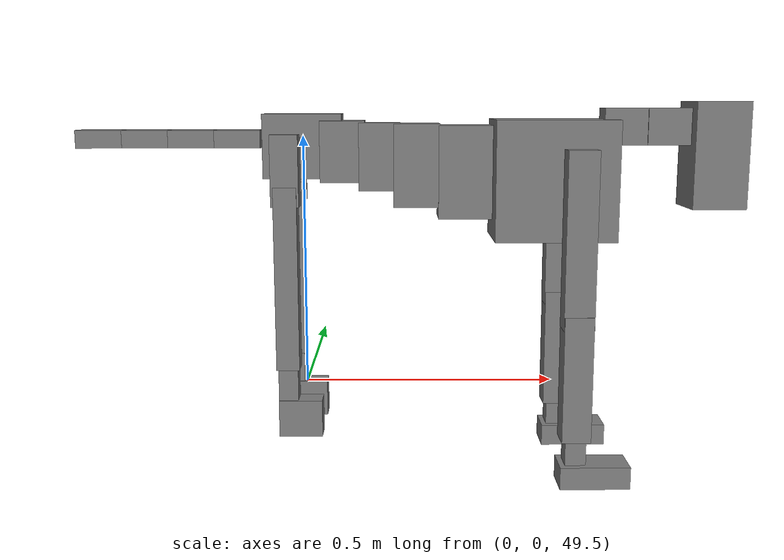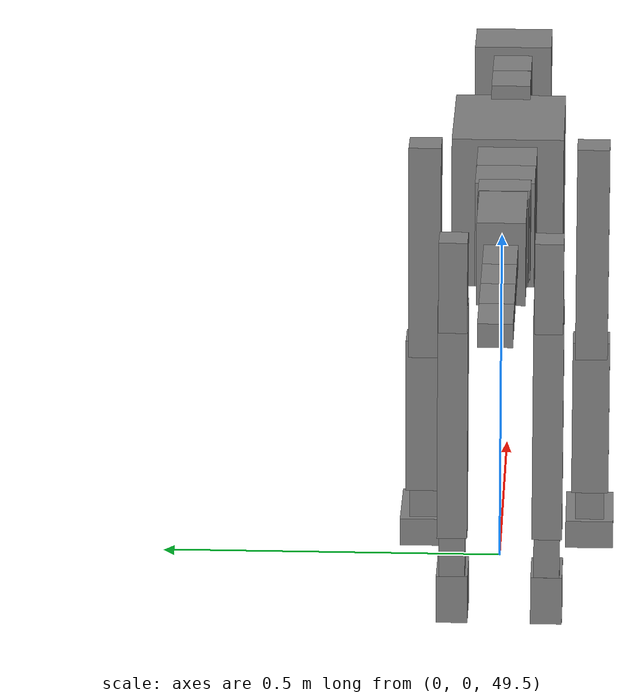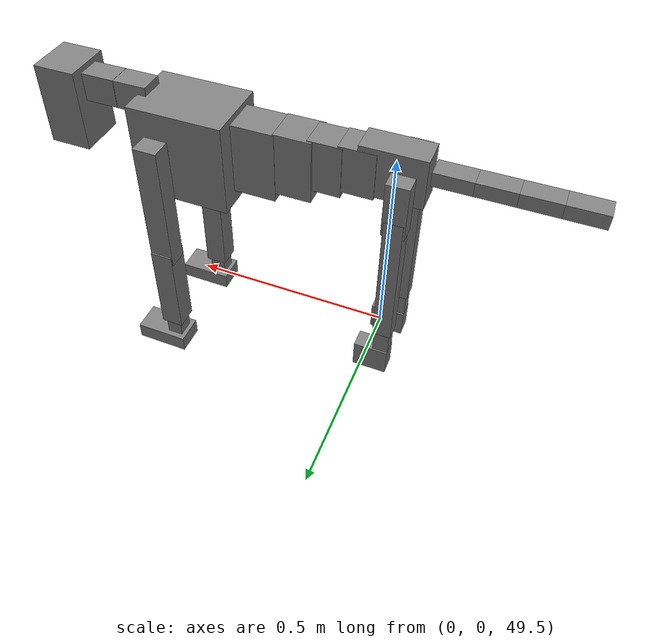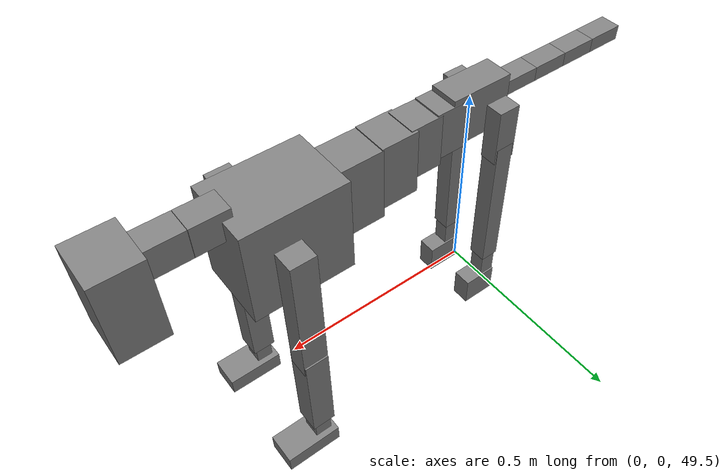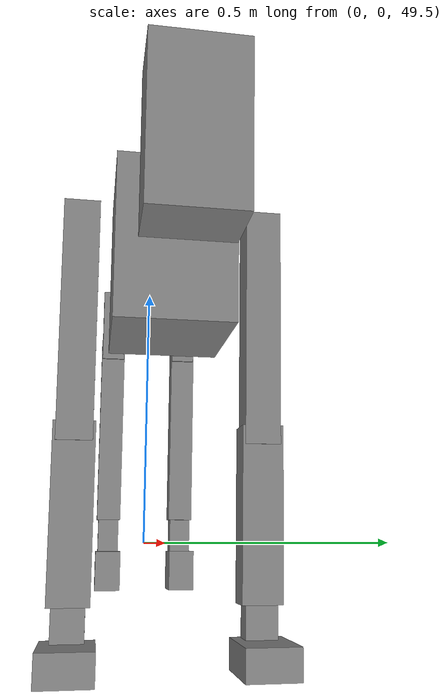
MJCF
<mujoco model="dog">

    <default>
        <joint armature="0.02" stiffness="1" damping="0.2" limited="true"/>
        <geom condim="3" friction="1 0.05 0.05" margin="0.01"/>
        <motor ctrllimited="true" ctrlrange="-1.0 1.0" forcelimited="true" gear="50"/>
    </default>

    <compiler inertiafromgeom="true" angle="radian"/>

    <option timestep="0.016" iterations="50" tolerance="1e-10" solver="Newton" jacobian="dense" cone="pyramidal"/>

    <size nconmax="20000" njmax="60000" nstack="5000000"/>
    <visual>
        <map force="0.1" zfar="30"/>
        <rgba haze="0.15 0.25 0.35 1"/>
        <quality shadowsize="2048"/>
        <global offwidth="800" offheight="800"/>
    </visual>

    <asset>
        <texture type="skybox" builtin="gradient" rgb1="0.3 0.5 0.7" rgb2="0 0 0" width="512" height="512"/>
        <texture name="texplane" type="2d" builtin="checker" rgb1=".2 .3 .4" rgb2=".1 0.15 0.2" width="512" height="512"
                 mark="cross" markrgb=".8 .8 .8"/>
        <texture name="texgeom" type="cube" builtin="flat" mark="cross" width="127" height="1278" rgb1="0.8 0.6 0.4"
                 rgb2="0.8 0.6 0.4" markrgb="1 1 1" random="0.01"/>

        <material name="matplane" reflectance="0.3" texture="texplane" texrepeat="1 1" texuniform="true"/>
        <material name="matgeom" texture="texgeom" texuniform="true" rgba="0.8 0.6 .4 1"/>
    </asset>

    <worldbody>
        <geom name="floor" pos="0 0 0" size="0 0 .25" type="plane" material="matplane" condim="3"/>

        <light directional="false" diffuse=".2 .2 .2" specular="0 0 0" pos="0 0 5" dir="0 0 -1" castshadow="false"/>
        <light mode="targetbodycom" target="torso" directional="false" diffuse=".8 .8 .8" specular="0.3 0.3 0.3"
               pos="0 0 4.0" dir="0 0 -1"/>

        <body name="root" pos="0 0 50">
            <freejoint name="root_1"/>
            <geom type="box" pos="0 0 -0.02" size="0.0774  0.0358  0.063" density="2030"/>

            <body name="spine1" pos="0.054 0 0">
                <joint name="spine1_y" axis="0 1 0" range="0 0.7" limited="true"/>
                <geom type="box" pos="0.02375 0 -0.03" size="0.04375  0.0375  0.05985" density="2030"/>

                <body name="spine2" pos="0.0612 0 0">
                    <joint name="spine2_y" axis="0 1 0" range="-0.15 0.15" limited="true"/>
                    <geom type="box" pos="0.03555  0  -0.04" size="0.04055  0.039  0.06615" density="2030"/>

                    <body name="spine3" pos="0.0730 0 0">
                        <joint name="spine3_y" axis="0 1 0" range="-0.15 0.15" limited="true"/>
                        <geom type="box" pos="0.03555  0  -0.057" size="0.04555  0.0445  0.081" density="2030"/>

                        <body name="spine4" pos="0.0780 0 0">
                            <joint name="spine4_y" axis="0 1 0" range="-0.15 0.15" limited="true"/>
                            <geom type="box" pos="0.05265  0  -0.07" size="0.05265  0.045  0.09135" density="2030"/>

                            <body name="torso" pos="0.1082 0 0">
                                <joint name="torso_y" axis="0 1 0" range="-0.15 0.15" limited="true"/>
                                <geom type="box" pos="0.11925  0  -0.085" size="0.11925  0.085  0.11745"
                                      density="2030"/>

                                <body name="neck1" pos="0.2160  0   0.0180">
                                    <joint name="neck1_y" axis="0 1 0" range="-1.2  -1" limited="true"/>
                                    <geom type="box" pos="0.0423  0  0" size="0.0423  0.03  0.036" density="2325"/>

                                    <body name="neck2" pos="0.0853  0  0">
                                        <joint name="neck2_y" axis="0 1 0" range="0.1  0" limited="true"/>
                                        <geom type="box" pos="0.0423  0  0" size="0.0423  0.03  0.036" density="2325"/>

                                        <body name="head" pos="0.0853  0  0">
                                            <joint name="head_y" axis="0 1 0" range="-0.3  -0.2" limited="true"/>
                                            <geom type="box" pos="0.0531  0  -0.055" size="0.0531  0.06  0.1044"
                                                  density="4030"/>

                                        </body>
                                    </body>
                                </body>

                                <body name="front_shoulder" pos="0.156  0   -0.0480">
                                    <joint name="front_shoulder_y" axis="0 1 0" range="-1 1.5" limited="true"/>
                                    <geom type="box" pos="0 0.13 -0.1439" size="0.0294  0.0251  0.1705" density="1158"/>
                                    <geom type="box" pos="0 -0.13 -0.1439" size="0.0294  0.0251  0.1705"
                                          density="1158"/>

                                    <body name="front_elbow" pos="0  0  -0.2877">
                                        <joint name="front_elbow_y" axis="0 1 0" range="-2 0" limited="true"/>
                                        <geom type="box" pos="0 0.13 -0.1238" size="0.0282  0.0288  0.1238"
                                              density="1081"/>
                                        <geom type="box" pos="0 -0.13 -0.1238" size="0.0282  0.0288  0.1238"
                                              density="1081"/>

                                        <body name="front_wrist" pos="0  0  -0.2477">
                                            <joint name="front_wrist_y" axis="0 1 0" range="-0.2 0" limited="true"/>
                                            <geom type="box" pos="0 0.13 -0.0308" size="0.0203  0.0225  0.0439"
                                                  density="1664"/>
                                            <geom type="box" pos="0 -0.13 -0.0308" size="0.0203  0.0225  0.0439"
                                                  density="1664"/>

                                            <body name="front_finger_end" pos="0  0  -0.0616">
                                                <joint name="front_finger_y" axis="0 1 0" range="-0.4 1"
                                                       limited="true"/>
                                                <geom type="box" pos="0.0373  0.13  -0.0071"
                                                      size="0.0683  0.0373  0.0221" density="1515"/>
                                                <geom type="box" pos="0.0373  -0.13  -0.0071"
                                                      size="0.0683  0.0373  0.0221" density="1515"/>

                                            </body>

                                        </body>
                                    </body>
                                </body>

                            </body>
                        </body>
                    </body>
                </body>
            </body>

            <body name="back_hip" pos="-0.03 0 -0.018">
                <joint name="back_hip_y" axis="0 1 0" range="-1.5 0.3" limited="true"/>
                <geom type="box" pos="0 0.07 -0.0463" size="0.0269  0.0211  0.0691" density="1154"/>
                <geom type="box" pos="0 -0.07 -0.0463" size="0.0269  0.0211  0.0691" density="1154"/>

                <body name="back_knee" pos="0  0  -0.0927">
                    <joint name="back_knee_y" axis="0 1 0" range="0 2.8" limited="true"/>
                    <geom type="box" pos="0 0.07 -0.1643" size="0.0226  0.0223  0.1799" density="1227"/>
                    <geom type="box" pos="0 -0.07 -0.1643" size="0.0226  0.0223  0.1799" density="1227"/>

                    <body name="back_ankle" pos="0  0  -0.3287">
                        <joint name="back_ankle_y" axis="0 1 0" range="-2.2 0" limited="true"/>
                        <geom type="box" pos="0 0.07 -0.0459" size="0.0192  0.0192  0.0571" density="1284"/>
                        <geom type="box" pos="0 -0.07 -0.0459" size="0.0192  0.0192  0.0571" density="1284"/>

                        <body name="back_toe_end" pos="0  0  -0.0917">
                            <joint name="back_toe_y" axis="0 1 0" range="-0.4 1" limited="true"/>
                            <geom type="box" pos="0.0233  0.07  -0.0217" size="0.0427  0.0233  0.0367" density="1515"/>
                            <geom type="box" pos="0.0233  -0.07  -0.0217" size="0.0427  0.0233  0.0367" density="1515"/>

                        </body>
                    </body>
                </body>
            </body>

            <body name="tail1" pos="-0.074 0 -0.006">
                <joint name="tail1_y" axis="0 1 0" range="-0.2 0.2" limited="true"/>
                <geom type="box" pos="-0.0536  0  0" size="0.045  0.025  0.0175" density="1587"/>

                <body name="tail2" pos="-0.09 0 0">
                    <joint name="tail2_y" axis="0 1 0" range="-0.2 0.2" limited="true"/>
                    <geom type="box" pos="-0.0536  0  0" size="0.045  0.025  0.0175" density="1587"/>

                    <body name="tail3" pos="-0.09 0 0">
                        <joint name="tail3_y" axis="0 1 0" range="-0.2 0.2" limited="true"/>
                        <geom type="box" pos="-0.0536  0  0" size="0.045  0.025  0.0175" density="1587"/>

                        <body name="tail4" pos="-0.09 0 0">
                            <joint name="tail4_y" axis="0 1 0" range="-0.2 0.2" limited="true"/>
                            <geom type="box" pos="-0.0536  0  0" size="0.045  0.025  0.0175" density="1587"/>

                        </body>
                    </body>
                </body>
            </body>
        </body>
    </worldbody>

    <actuator>
        <motor joint="spine1_y" forcerange="-150 150     "/>
        <motor joint="spine2_y" forcerange="-150 150     "/>
        <motor joint="spine3_y" forcerange="-150 150     "/>
        <motor joint="spine4_y" forcerange="-150 150     "/>
        <motor joint="torso_y" forcerange="-150 150     "/>
        <motor joint="neck1_y" forcerange="-100 100       "/>
        <motor joint="neck2_y" forcerange="-100 100       "/>
        <motor joint="head_y" forcerange="-150 150       "/>
        <motor joint="front_shoulder_y" forcerange="-143.78 123.75"/>
        <motor joint="front_elbow_y" forcerange="-196.41 113.22"/>
        <motor joint="front_wrist_y" forcerange="-94.34 86.04"/>
        <motor joint="front_finger_y" forcerange="-70.03 88.71"/>
        <motor joint="back_hip_y" forcerange="-248.72 232.99"/>
        <motor joint="back_knee_y" forcerange="-254.05 269.92"/>
        <motor joint="back_angle_y" forcerange="-85.90 121.41"/>
        <motor joint="back_toe_y" forcerange="-45.61 60.61"/>
        <motor joint="tail1_y" forcerange="-50 50     "/>
        <motor joint="tail2_y" forcerange="-50 50     "/>
        <motor joint="tail3_y" forcerange="-50 50     "/>
        <motor joint="tail4_y" forcerange="-50 50     "/>
    </actuator>
</mujoco>
